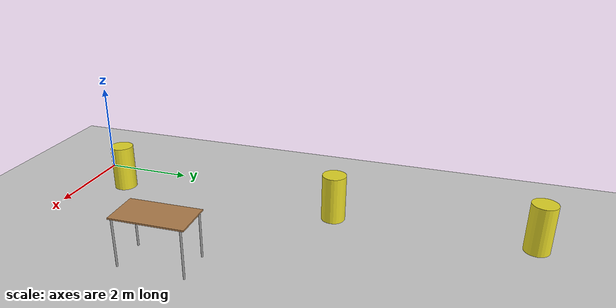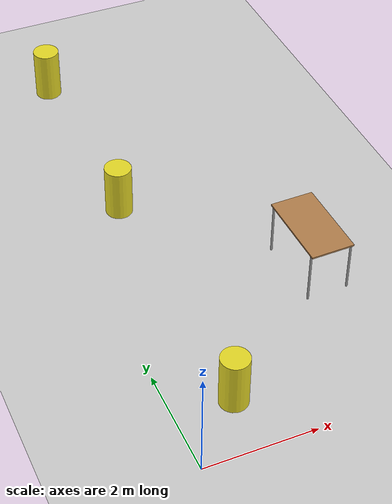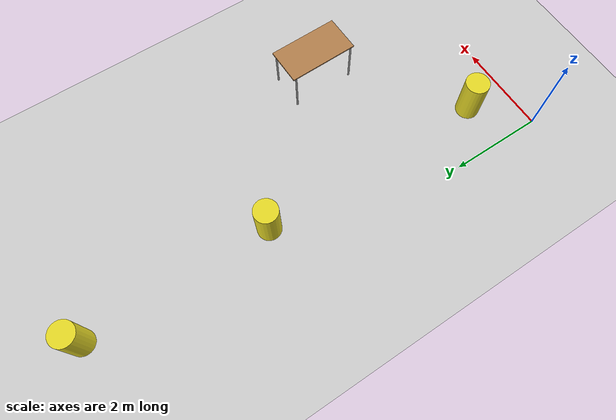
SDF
<sdf version="1.6">
 <world name="default">
  <light name="sun" type="directional">
   <pose>0 0 10 0 -0 0</pose>
   <diffuse>0.8 0.8 0.8 1</diffuse>
   <specular>0.2 0.2 0.2 1</specular>
   <attenuation>
    <range>1000</range>
    <constant>0.9</constant>
    <linear>0.01</linear>
    <quadratic>0.001</quadratic>
   </attenuation>
   <direction>-0.5 0.1 -0.9</direction>
  </light>
  <model name="ground_plane">
   <static>1</static>
   <link name="link">
    <collision name="collision">
     <geometry><plane><normal>0 0 1</normal><size>100 100</size></plane></geometry>
     <surface>
      <contact><collide_bitmask>65535</collide_bitmask></contact>
      <friction><ode><mu>100</mu><mu2>50</mu2></ode></friction>
     </surface>
    </collision>
    <visual name="visual">
     <cast_shadows>0</cast_shadows>
     <geometry><plane><normal>0 0 1</normal><size>100 100</size></plane></geometry>
     <material>
      <script><uri>file://media/materials/scripts/gazebo.material</uri><name>Gazebo/Grey</name></script>
     </material>
    </visual>
   </link>
  </model>
  <gravity>0 0 -9.8</gravity>
  <magnetic_field>6e-06 2.3e-05 -4.2e-05</magnetic_field>
  <atmosphere type="adiabatic"/>
  <physics name="default_physics" default="0" type="ode">
   <max_step_size>0.001</max_step_size>
   <real_time_factor>1</real_time_factor>
   <real_time_update_rate>1000</real_time_update_rate>
  </physics>
  <scene><ambient>0.4 0.4 0.4 1</ambient><background>0.7 0.7 0.7 1</background><shadows>1</shadows></scene>
  <audio><device>default</device></audio>
  <spherical_coordinates>
   <surface_model>EARTH_WGS84</surface_model>
   <latitude_deg>0</latitude_deg>
   <longitude_deg>0</longitude_deg>
   <elevation>0</elevation>
   <heading_deg>0</heading_deg>
  </spherical_coordinates>
  <model name="table">
   <static>1</static>
   <link name="link">
    <collision name="surface">
     <pose>0 0 1 0 -0 0</pose>
     <geometry><box><size>1.5 0.8 0.03</size></box></geometry>
     <surface><friction><ode><mu>0.6</mu><mu2>0.6</mu2></ode></friction></surface>
    </collision>
    <visual name="visual1">
     <pose>0 0 1 0 -0 0</pose>
     <geometry><box><size>1.5 0.8 0.03</size></box></geometry>
     <material>
      <script><uri>file://media/materials/scripts/gazebo.material</uri><name>Gazebo/Wood</name></script>
     </material>
    </visual>
    <collision name="front_left_leg">
     <pose>0.68 0.38 0.5 0 -0 0</pose>
     <geometry><cylinder><radius>0.02</radius><length>1</length></cylinder></geometry>
    </collision>
    <visual name="front_left_leg">
     <pose>0.68 0.38 0.5 0 -0 0</pose>
     <geometry><cylinder><radius>0.02</radius><length>1</length></cylinder></geometry>
     <material>
      <script><uri>file://media/materials/scripts/gazebo.material</uri><name>Gazebo/Grey</name></script>
     </material>
    </visual>
    <collision name="front_right_leg">
     <pose>0.68 -0.38 0.5 0 -0 0</pose>
     <geometry><cylinder><radius>0.02</radius><length>1</length></cylinder></geometry>
    </collision>
    <visual name="front_right_leg">
     <pose>0.68 -0.38 0.5 0 -0 0</pose>
     <geometry><cylinder><radius>0.02</radius><length>1</length></cylinder></geometry>
     <material>
      <script><uri>file://media/materials/scripts/gazebo.material</uri><name>Gazebo/Grey</name></script>
     </material>
    </visual>
    <collision name="back_right_leg">
     <pose>-0.68 -0.38 0.5 0 -0 0</pose>
     <geometry><cylinder><radius>0.02</radius><length>1</length></cylinder></geometry>
    </collision>
    <visual name="back_right_leg">
     <pose>-0.68 -0.38 0.5 0 -0 0</pose>
     <geometry><cylinder><radius>0.02</radius><length>1</length></cylinder></geometry>
     <material>
      <script><uri>file://media/materials/scripts/gazebo.material</uri><name>Gazebo/Grey</name></script>
     </material>
    </visual>
    <collision name="back_left_leg">
     <pose>-0.68 0.38 0.5 0 -0 0</pose>
     <geometry><cylinder><radius>0.02</radius><length>1</length></cylinder></geometry>
    </collision>
    <visual name="back_left_leg">
     <pose>-0.68 0.38 0.5 0 -0 0</pose>
     <geometry><cylinder><radius>0.02</radius><length>1</length></cylinder></geometry>
     <material>
      <script><uri>file://media/materials/scripts/gazebo.material</uri><name>Gazebo/Grey</name></script>
     </material>
    </visual>
    <enable_wind>1</enable_wind>
   </link>
   <pose>3.52483 3.31388 0 0 -0 1.59012</pose>
   <enable_wind>1</enable_wind>
  </model>
  <include><uri>model://obstacle_sim</uri><name>Obstacle1</name><pose>1.0 1.0 0.55 0 0 0</pose></include>
  <include><uri>model://obstacle_sim</uri><name>Obstacle2</name><pose>1.0 6.0 0.55 0 0 0</pose></include>
  <include><uri>model://obstacle_sim</uri><name>Obstacle3</name><pose>1.0 10.0 0.55 0 0 0</pose></include>
 </world>
</sdf>

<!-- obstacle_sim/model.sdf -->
<sdf version='1.4'>
  <model name="obstacle_sim">
      <static>0</static>
      <link name='link'>
        <inertial>
          <mass>0.25</mass>
          <inertia>
            <ixx>0.001</ixx>
            <ixy>0.000000</ixy>
            <ixz>0.000000</ixz>
            <iyy>0.001</iyy>
            <iyz>0.000000</iyz>
            <izz>0.001</izz>
          </inertia>
        </inertial>
        <collision name='collision'>
          <geometry>
            <cylinder>
            	<radius>0.25</radius>
            	<length>1.0</length>
          	</cylinder>
          </geometry>
          <surface>
            <friction>
              <ode>
                <mu>30.0</mu>
                <mu2>30.0</mu2>
              </ode>
            </friction>
            <contact>
              <ode>
                <kp>1000000.0</kp>
                <kd>100.0</kd>
                <max_vel>1.0</max_vel>
                <min_depth>0.002</min_depth>
              </ode>
            </contact>
          </surface>
        </collision>
        <visual name='visual'>
          <geometry>
            <cylinder>
            	<radius>0.25</radius>
            	<length>1.0</length>
          	</cylinder>
          </geometry>
          <material>
            <script>
              <uri>file://media/materials/scripts/gazebo.material</uri>
              <name>Gazebo/Yellow</name>
            </script>
          </material>
        </visual>
        <velocity_decay>
          <linear>0.000000</linear>
          <angular>0.000000</angular>
        </velocity_decay>
        <self_collide>0</self_collide>
        <kinematic>0</kinematic>
        <gravity>1</gravity>
      </link>
  </model>
</sdf>
